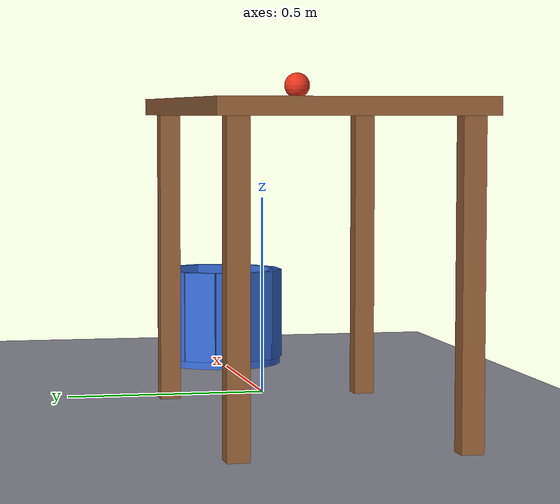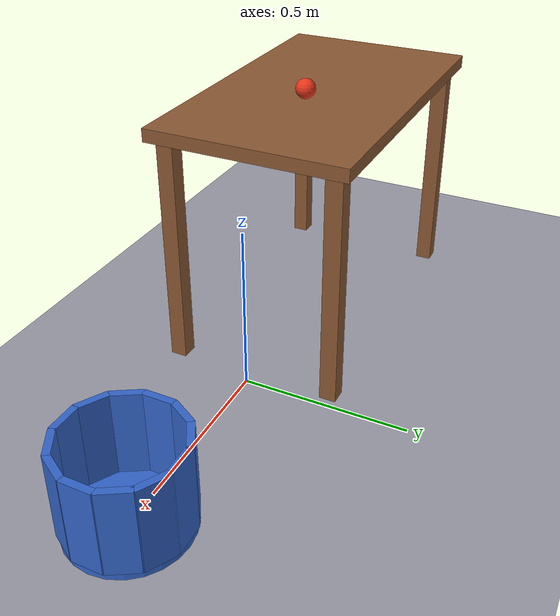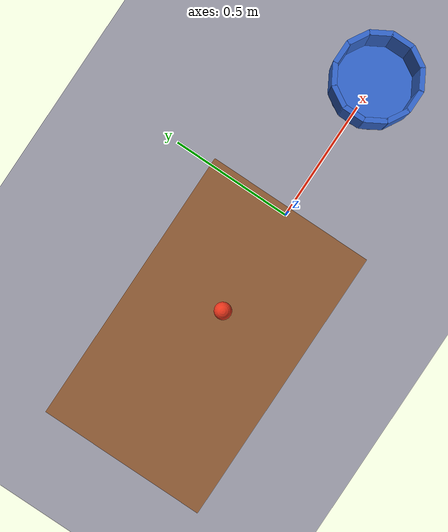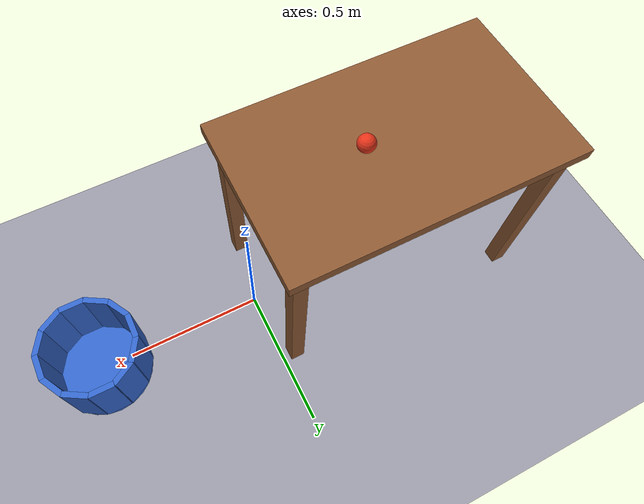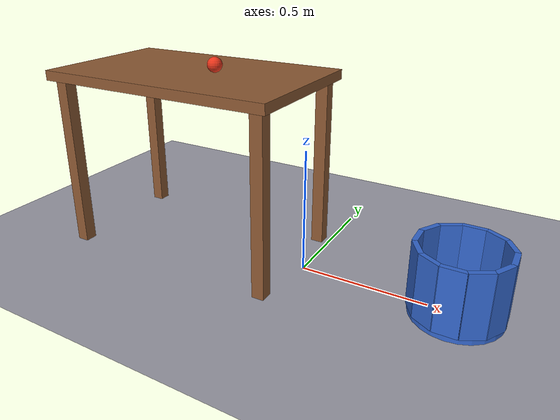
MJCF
<mujoco model="ball_table_bucket">
  <option timestep="0.002" gravity="0 0 -9.81"/>

  <visual>
    <global offwidth="1280" offheight="720"/>
  </visual>

  <asset>
    <material name="floor_mat" rgba="0.6 0.6 0.65 1"/>
    <material name="wood" rgba="0.55 0.35 0.2 1"/>
    <material name="bucket_mat" rgba="0.2 0.4 0.8 1"/>
    <material name="ball_mat" rgba="0.9 0.2 0.1 1"/>
  </asset>

  <worldbody>
    <light name="sun" pos="0.3 -1 3" dir="0 0.3 -1" directional="true"/>
    <camera name="side" pos="0.1 -2.2 0.7" xyaxes="1 0 0 0 0.3 1"/>

    <geom name="floor" type="plane" size="5 5 0.1" material="floor_mat"/>

    <!-- Table: top surface at z = 0.75, edge at x = 0 -->
    <body name="table" pos="0 0 0">
      <geom name="table_top" type="box" size="0.5 0.3 0.02" pos="-0.5 0 0.73" material="wood" friction="1 0.005 0.0001"/>
      <geom name="table_leg1" type="box" size="0.025 0.025 0.355" pos="-0.05 0.25 0.355" material="wood"/>
      <geom name="table_leg2" type="box" size="0.025 0.025 0.355" pos="-0.05 -0.25 0.355" material="wood"/>
      <geom name="table_leg3" type="box" size="0.025 0.025 0.355" pos="-0.95 0.25 0.355" material="wood"/>
      <geom name="table_leg4" type="box" size="0.025 0.025 0.355" pos="-0.95 -0.25 0.355" material="wood"/>
    </body>

    <!-- Bucket: centre 0.6 m beyond the table edge, inner radius ~0.15 m, rim at z = 0.27 -->
    <body name="bucket" pos="0.6 0 0">
      <geom name="bucket_bottom" type="cylinder" size="0.17 0.01" pos="0 0 0.01" material="bucket_mat" condim="6" friction="1 0.02 0.02"/>
      <geom name="bucket_wall00" type="box" size="0.01 0.044 0.125" pos="0.16 0 0.145" euler="0 0 0" material="bucket_mat"/>
      <geom name="bucket_wall01" type="box" size="0.01 0.044 0.125" pos="0.1386 0.08 0.145" euler="0 0 30" material="bucket_mat"/>
      <geom name="bucket_wall02" type="box" size="0.01 0.044 0.125" pos="0.08 0.1386 0.145" euler="0 0 60" material="bucket_mat"/>
      <geom name="bucket_wall03" type="box" size="0.01 0.044 0.125" pos="0 0.16 0.145" euler="0 0 90" material="bucket_mat"/>
      <geom name="bucket_wall04" type="box" size="0.01 0.044 0.125" pos="-0.08 0.1386 0.145" euler="0 0 120" material="bucket_mat"/>
      <geom name="bucket_wall05" type="box" size="0.01 0.044 0.125" pos="-0.1386 0.08 0.145" euler="0 0 150" material="bucket_mat"/>
      <geom name="bucket_wall06" type="box" size="0.01 0.044 0.125" pos="-0.16 0 0.145" euler="0 0 180" material="bucket_mat"/>
      <geom name="bucket_wall07" type="box" size="0.01 0.044 0.125" pos="-0.1386 -0.08 0.145" euler="0 0 210" material="bucket_mat"/>
      <geom name="bucket_wall08" type="box" size="0.01 0.044 0.125" pos="-0.08 -0.1386 0.145" euler="0 0 240" material="bucket_mat"/>
      <geom name="bucket_wall09" type="box" size="0.01 0.044 0.125" pos="0 -0.16 0.145" euler="0 0 270" material="bucket_mat"/>
      <geom name="bucket_wall10" type="box" size="0.01 0.044 0.125" pos="0.08 -0.1386 0.145" euler="0 0 300" material="bucket_mat"/>
      <geom name="bucket_wall11" type="box" size="0.01 0.044 0.125" pos="0.1386 -0.08 0.145" euler="0 0 330" material="bucket_mat"/>
    </body>

    <!-- Ball: radius 3 cm, resting on the table top -->
    <body name="ball" pos="-0.4 0 0.78">
      <freejoint name="ball_free"/>
      <geom name="ball" type="sphere" size="0.03" density="1000" material="ball_mat"/>
    </body>
  </worldbody>

  <keyframe>
    <!-- Rolling without slip: vx = 1.555 m/s, wy = vx / r = 51.83 rad/s -->
    <key name="start" qpos="-0.4 0 0.78 1 0 0 0" qvel="1.555 0 0 0 51.83 0 0"/>
  </keyframe>
</mujoco>
